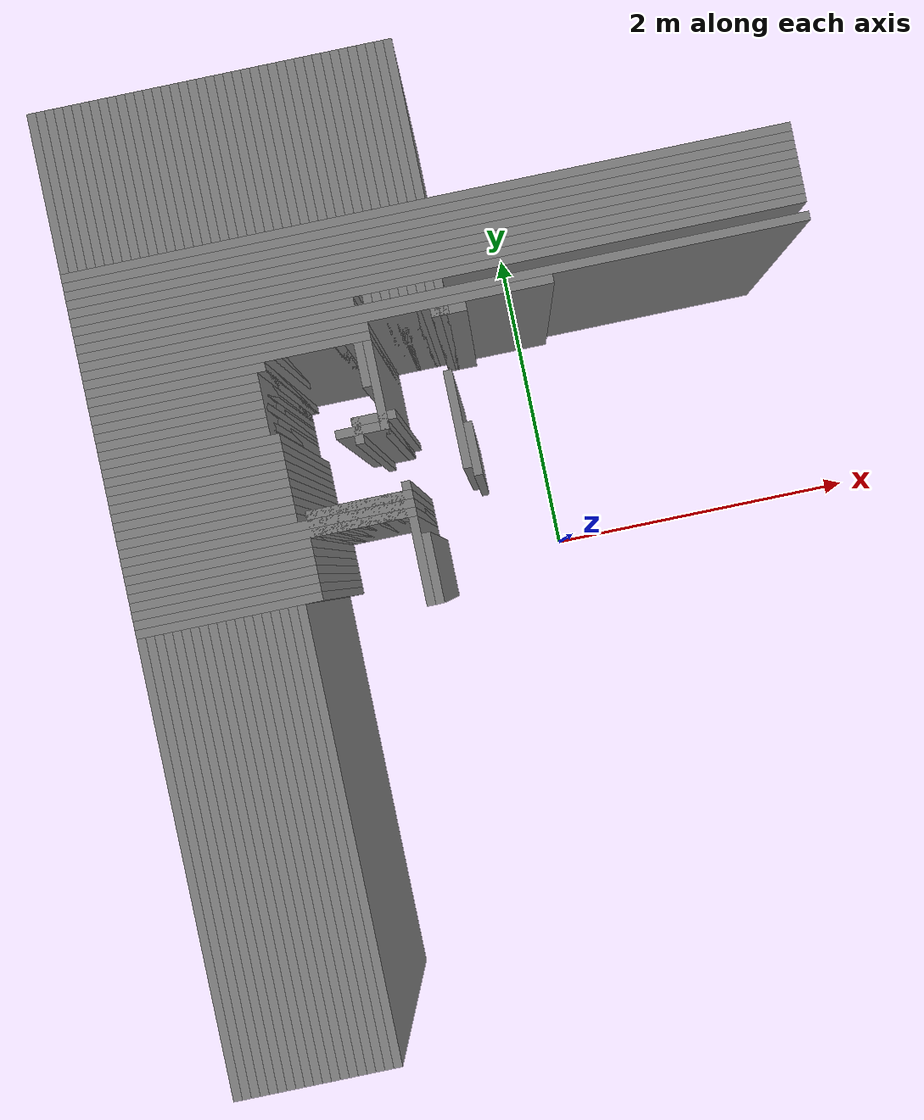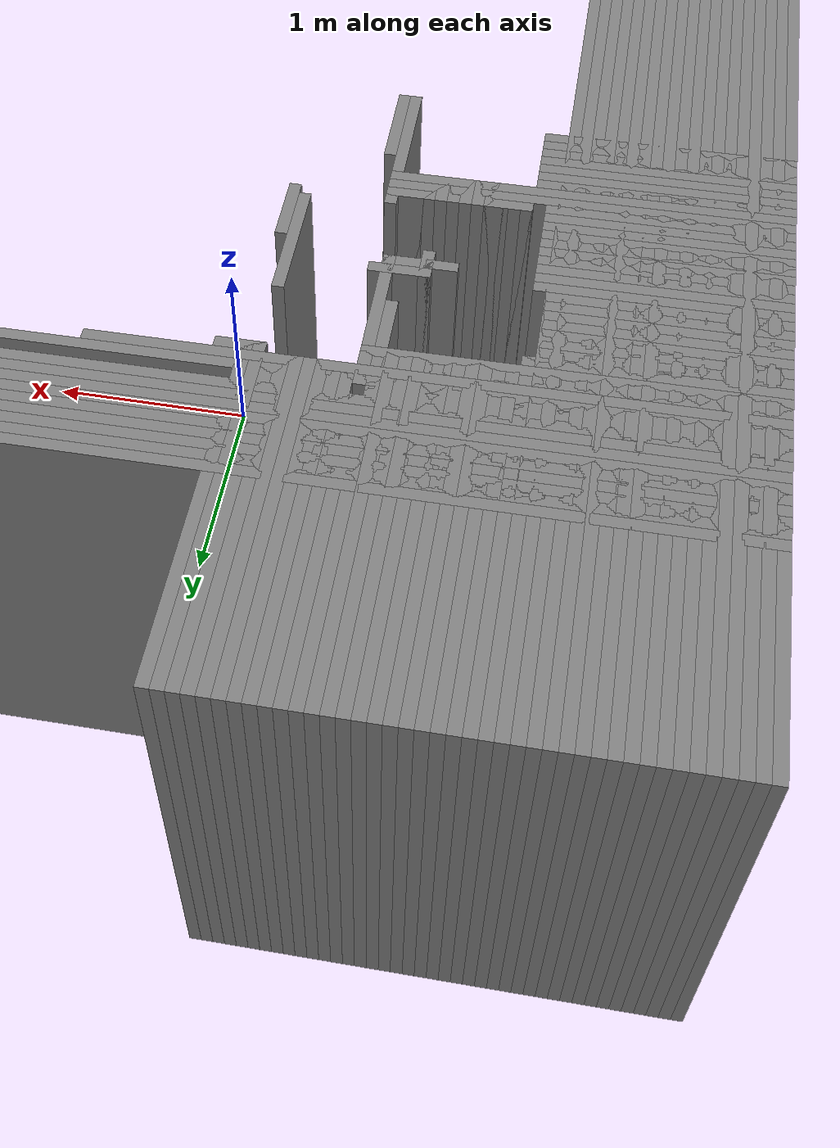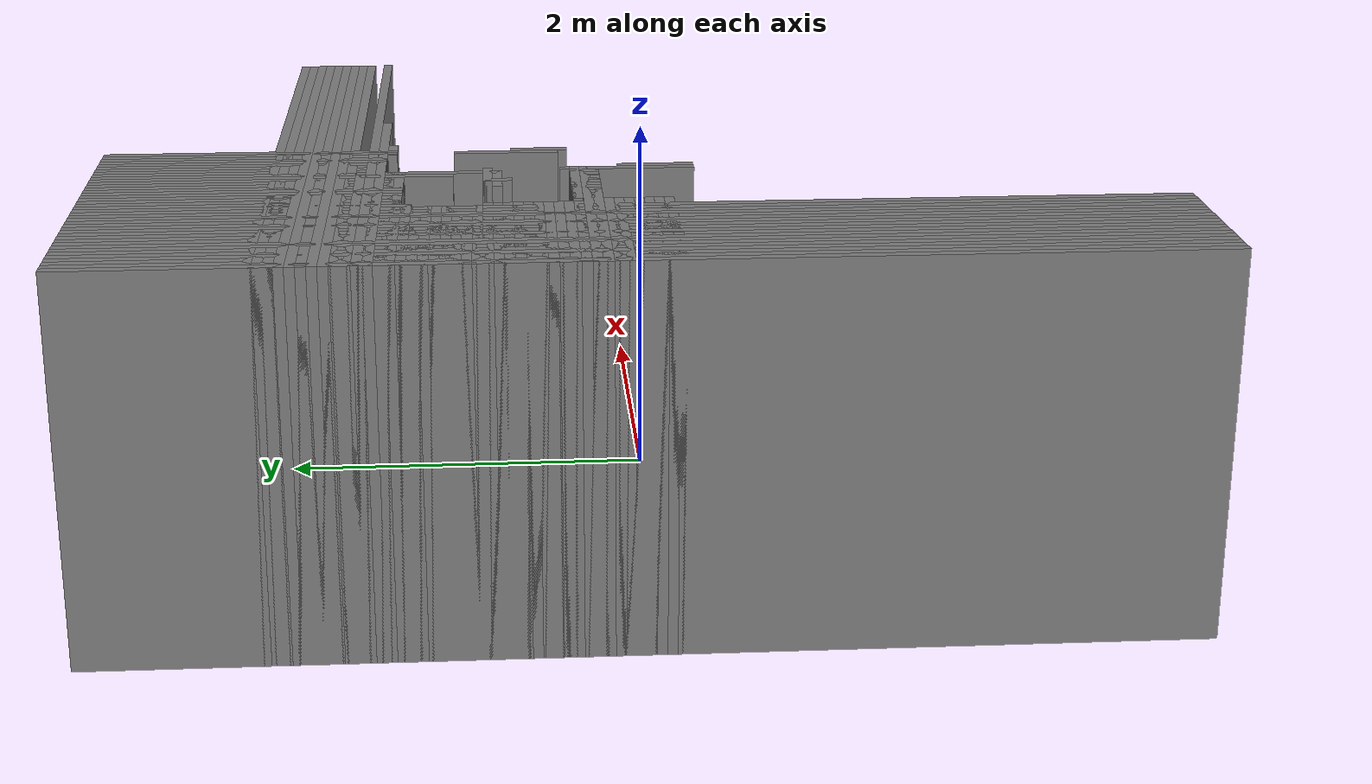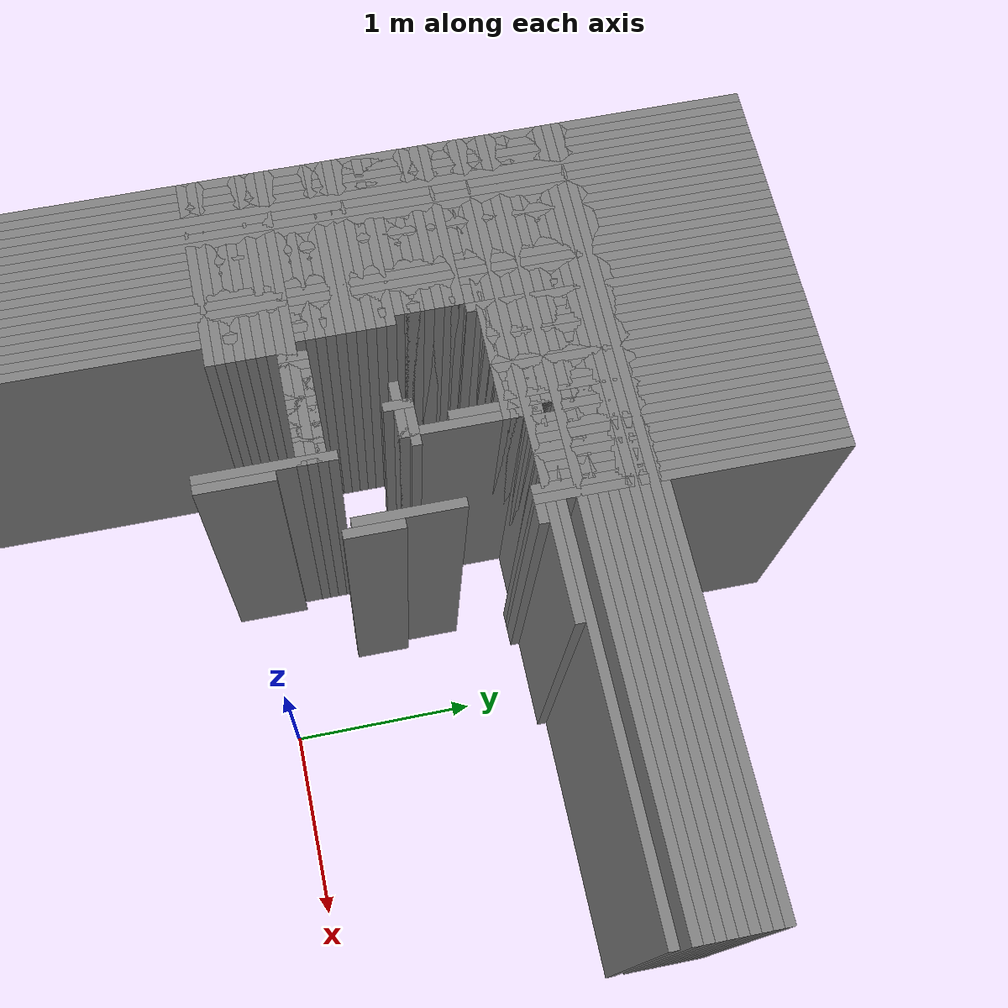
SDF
<sdf version="1.6">
 <model name="maze_map">
  <static>true</static>
  <link name="wall_18">
   <pose>-0.41500000000000004 1.9500000000000006 1.0 0 0 0</pose>
   <collision name="collision">
    <geometry><box><size>4.1000000000000005 0.05 2.0</size></box></geometry>
   </collision>
   <visual name="visual">
    <geometry><box><size>4.1000000000000005 0.05 2.0</size></box></geometry>
    <material><ambient>0.3 0.3 0.3 1</ambient><diffuse>0.5 0.5 0.5 1</diffuse></material>
   </visual>
  </link>
  <link name="wall_19">
   <pose>-0.41500000000000004 1.9 1.0 0 0 0</pose>
   <collision name="collision">
    <geometry><box><size>4.1000000000000005 0.05 2.0</size></box></geometry>
   </collision>
   <visual name="visual">
    <geometry><box><size>4.1000000000000005 0.05 2.0</size></box></geometry>
    <material><ambient>0.3 0.3 0.3 1</ambient><diffuse>0.5 0.5 0.5 1</diffuse></material>
   </visual>
  </link>
  <link name="wall_20">
   <pose>-0.41500000000000004 1.85 1.0 0 0 0</pose>
   <collision name="collision">
    <geometry><box><size>4.1000000000000005 0.05 2.0</size></box></geometry>
   </collision>
   <visual name="visual">
    <geometry><box><size>4.1000000000000005 0.05 2.0</size></box></geometry>
    <material><ambient>0.3 0.3 0.3 1</ambient><diffuse>0.5 0.5 0.5 1</diffuse></material>
   </visual>
  </link>
  <link name="wall_21">
   <pose>-0.41500000000000004 1.8000000000000003 1.0 0 0 0</pose>
   <collision name="collision">
    <geometry><box><size>4.1000000000000005 0.05 2.0</size></box></geometry>
   </collision>
   <visual name="visual">
    <geometry><box><size>4.1000000000000005 0.05 2.0</size></box></geometry>
    <material><ambient>0.3 0.3 0.3 1</ambient><diffuse>0.5 0.5 0.5 1</diffuse></material>
   </visual>
  </link>
  <link name="wall_22">
   <pose>-0.41500000000000004 1.7500000000000004 1.0 0 0 0</pose>
   <collision name="collision">
    <geometry><box><size>4.1000000000000005 0.05 2.0</size></box></geometry>
   </collision>
   <visual name="visual">
    <geometry><box><size>4.1000000000000005 0.05 2.0</size></box></geometry>
    <material><ambient>0.3 0.3 0.3 1</ambient><diffuse>0.5 0.5 0.5 1</diffuse></material>
   </visual>
  </link>
  <link name="wall_23">
   <pose>-0.41500000000000004 1.7000000000000006 1.0 0 0 0</pose>
   <collision name="collision">
    <geometry><box><size>4.1000000000000005 0.05 2.0</size></box></geometry>
   </collision>
   <visual name="visual">
    <geometry><box><size>4.1000000000000005 0.05 2.0</size></box></geometry>
    <material><ambient>0.3 0.3 0.3 1</ambient><diffuse>0.5 0.5 0.5 1</diffuse></material>
   </visual>
  </link>
  <link name="wall_24">
   <pose>-0.41500000000000004 1.65 1.0 0 0 0</pose>
   <collision name="collision">
    <geometry><box><size>4.1000000000000005 0.05 2.0</size></box></geometry>
   </collision>
   <visual name="visual">
    <geometry><box><size>4.1000000000000005 0.05 2.0</size></box></geometry>
    <material><ambient>0.3 0.3 0.3 1</ambient><diffuse>0.5 0.5 0.5 1</diffuse></material>
   </visual>
  </link>
  <link name="wall_25">
   <pose>-0.41500000000000004 1.6 1.0 0 0 0</pose>
   <collision name="collision">
    <geometry><box><size>4.1000000000000005 0.05 2.0</size></box></geometry>
   </collision>
   <visual name="visual">
    <geometry><box><size>4.1000000000000005 0.05 2.0</size></box></geometry>
    <material><ambient>0.3 0.3 0.3 1</ambient><diffuse>0.5 0.5 0.5 1</diffuse></material>
   </visual>
  </link>
  <link name="wall_26">
   <pose>-0.41500000000000004 1.5500000000000003 1.0 0 0 0</pose>
   <collision name="collision">
    <geometry><box><size>4.1000000000000005 0.05 2.0</size></box></geometry>
   </collision>
   <visual name="visual">
    <geometry><box><size>4.1000000000000005 0.05 2.0</size></box></geometry>
    <material><ambient>0.3 0.3 0.3 1</ambient><diffuse>0.5 0.5 0.5 1</diffuse></material>
   </visual>
  </link>
  <link name="wall_27">
   <pose>-1.69 1.5000000000000004 1.0 0 0 0</pose>
   <collision name="collision"><geometry><box><size>1.55 0.05 2.0</size></box></geometry></collision>
   <visual name="visual">
    <geometry><box><size>1.55 0.05 2.0</size></box></geometry>
    <material><ambient>0.3 0.3 0.3 1</ambient><diffuse>0.5 0.5 0.5 1</diffuse></material>
   </visual>
  </link>
  <link name="wall_29">
   <pose>-0.41500000000000004 1.4500000000000006 1.0 0 0 0</pose>
   <collision name="collision">
    <geometry><box><size>4.1000000000000005 0.05 2.0</size></box></geometry>
   </collision>
   <visual name="visual">
    <geometry><box><size>4.1000000000000005 0.05 2.0</size></box></geometry>
    <material><ambient>0.3 0.3 0.3 1</ambient><diffuse>0.5 0.5 0.5 1</diffuse></material>
   </visual>
  </link>
  <link name="wall_30">
   <pose>-1.14 1.4 1.0 0 0 0</pose>
   <collision name="collision">
    <geometry><box><size>2.6500000000000004 0.05 2.0</size></box></geometry>
   </collision>
   <visual name="visual">
    <geometry><box><size>2.6500000000000004 0.05 2.0</size></box></geometry>
    <material><ambient>0.3 0.3 0.3 1</ambient><diffuse>0.5 0.5 0.5 1</diffuse></material>
   </visual>
  </link>
  <link name="wall_32">
   <pose>-1.665 1.35 1.0 0 0 0</pose>
   <collision name="collision"><geometry><box><size>1.6 0.05 2.0</size></box></geometry></collision>
   <visual name="visual">
    <geometry><box><size>1.6 0.05 2.0</size></box></geometry>
    <material><ambient>0.3 0.3 0.3 1</ambient><diffuse>0.5 0.5 0.5 1</diffuse></material>
   </visual>
  </link>
  <link name="wall_33">
   <pose>-0.41500000000000004 1.35 1.0 0 0 0</pose>
   <collision name="collision"><geometry><box><size>0.2 0.05 2.0</size></box></geometry></collision>
   <visual name="visual">
    <geometry><box><size>0.2 0.05 2.0</size></box></geometry>
    <material><ambient>0.3 0.3 0.3 1</ambient><diffuse>0.5 0.5 0.5 1</diffuse></material>
   </visual>
  </link>
  <link name="wall_35">
   <pose>-1.665 1.3000000000000003 1.0 0 0 0</pose>
   <collision name="collision"><geometry><box><size>1.6 0.05 2.0</size></box></geometry></collision>
   <visual name="visual">
    <geometry><box><size>1.6 0.05 2.0</size></box></geometry>
    <material><ambient>0.3 0.3 0.3 1</ambient><diffuse>0.5 0.5 0.5 1</diffuse></material>
   </visual>
  </link>
  <link name="wall_37">
   <pose>-1.9649999999999999 1.2500000000000004 1.0 0 0 0</pose>
   <collision name="collision"><geometry><box><size>1.0 0.05 2.0</size></box></geometry></collision>
   <visual name="visual">
    <geometry><box><size>1.0 0.05 2.0</size></box></geometry>
    <material><ambient>0.3 0.3 0.3 1</ambient><diffuse>0.5 0.5 0.5 1</diffuse></material>
   </visual>
  </link>
  <link name="wall_39">
   <pose>-1.99 1.2000000000000002 1.0 0 0 0</pose>
   <collision name="collision">
    <geometry><box><size>0.9500000000000001 0.05 2.0</size></box></geometry>
   </collision>
   <visual name="visual">
    <geometry><box><size>0.9500000000000001 0.05 2.0</size></box></geometry>
    <material><ambient>0.3 0.3 0.3 1</ambient><diffuse>0.5 0.5 0.5 1</diffuse></material>
   </visual>
  </link>
  <link name="wall_41">
   <pose>-1.99 1.1500000000000004 1.0 0 0 0</pose>
   <collision name="collision">
    <geometry><box><size>0.9500000000000001 0.05 2.0</size></box></geometry>
   </collision>
   <visual name="visual">
    <geometry><box><size>0.9500000000000001 0.05 2.0</size></box></geometry>
    <material><ambient>0.3 0.3 0.3 1</ambient><diffuse>0.5 0.5 0.5 1</diffuse></material>
   </visual>
  </link>
  <link name="wall_43">
   <pose>-1.99 1.1 1.0 0 0 0</pose>
   <collision name="collision">
    <geometry><box><size>0.9500000000000001 0.05 2.0</size></box></geometry>
   </collision>
   <visual name="visual">
    <geometry><box><size>0.9500000000000001 0.05 2.0</size></box></geometry>
    <material><ambient>0.3 0.3 0.3 1</ambient><diffuse>0.5 0.5 0.5 1</diffuse></material>
   </visual>
  </link>
  <link name="wall_45">
   <pose>-1.99 1.0500000000000003 1.0 0 0 0</pose>
   <collision name="collision">
    <geometry><box><size>0.9500000000000001 0.05 2.0</size></box></geometry>
   </collision>
   <visual name="visual">
    <geometry><box><size>0.9500000000000001 0.05 2.0</size></box></geometry>
    <material><ambient>0.3 0.3 0.3 1</ambient><diffuse>0.5 0.5 0.5 1</diffuse></material>
   </visual>
  </link>
  <link name="wall_48">
   <pose>-1.99 1.0000000000000004 1.0 0 0 0</pose>
   <collision name="collision">
    <geometry><box><size>0.9500000000000001 0.05 2.0</size></box></geometry>
   </collision>
   <visual name="visual">
    <geometry><box><size>0.9500000000000001 0.05 2.0</size></box></geometry>
    <material><ambient>0.3 0.3 0.3 1</ambient><diffuse>0.5 0.5 0.5 1</diffuse></material>
   </visual>
  </link>
  <link name="wall_50">
   <pose>-1.99 0.9500000000000002 1.0 0 0 0</pose>
   <collision name="collision">
    <geometry><box><size>0.9500000000000001 0.05 2.0</size></box></geometry>
   </collision>
   <visual name="visual">
    <geometry><box><size>0.9500000000000001 0.05 2.0</size></box></geometry>
    <material><ambient>0.3 0.3 0.3 1</ambient><diffuse>0.5 0.5 0.5 1</diffuse></material>
   </visual>
  </link>
  <link name="wall_52">
   <pose>-1.99 0.9000000000000004 1.0 0 0 0</pose>
   <collision name="collision">
    <geometry><box><size>0.9500000000000001 0.05 2.0</size></box></geometry>
   </collision>
   <visual name="visual">
    <geometry><box><size>0.9500000000000001 0.05 2.0</size></box></geometry>
    <material><ambient>0.3 0.3 0.3 1</ambient><diffuse>0.5 0.5 0.5 1</diffuse></material>
   </visual>
  </link>
  <link name="wall_54">
   <pose>-1.9649999999999999 0.8500000000000001 1.0 0 0 0</pose>
   <collision name="collision"><geometry><box><size>1.0 0.05 2.0</size></box></geometry></collision>
   <visual name="visual">
    <geometry><box><size>1.0 0.05 2.0</size></box></geometry>
    <material><ambient>0.3 0.3 0.3 1</ambient><diffuse>0.5 0.5 0.5 1</diffuse></material>
   </visual>
  </link>
  <link name="wall_55">
   <pose>-0.94 0.8500000000000001 1.0 0 0 0</pose>
   <collision name="collision"><geometry><box><size>0.25 0.05 2.0</size></box></geometry></collision>
   <visual name="visual">
    <geometry><box><size>0.25 0.05 2.0</size></box></geometry>
    <material><ambient>0.3 0.3 0.3 1</ambient><diffuse>0.5 0.5 0.5 1</diffuse></material>
   </visual>
  </link>
  <link name="wall_57">
   <pose>-1.9649999999999999 0.8000000000000003 1.0 0 0 0</pose>
   <collision name="collision"><geometry><box><size>1.0 0.05 2.0</size></box></geometry></collision>
   <visual name="visual">
    <geometry><box><size>1.0 0.05 2.0</size></box></geometry>
    <material><ambient>0.3 0.3 0.3 1</ambient><diffuse>0.5 0.5 0.5 1</diffuse></material>
   </visual>
  </link>
  <link name="wall_58">
   <pose>-1.015 0.8000000000000003 1.0 0 0 0</pose>
   <collision name="collision">
    <geometry><box><size>0.30000000000000004 0.05 2.0</size></box></geometry>
   </collision>
   <visual name="visual">
    <geometry><box><size>0.30000000000000004 0.05 2.0</size></box></geometry>
    <material><ambient>0.3 0.3 0.3 1</ambient><diffuse>0.5 0.5 0.5 1</diffuse></material>
   </visual>
  </link>
  <link name="wall_60">
   <pose>-1.9649999999999999 0.7500000000000004 1.0 0 0 0</pose>
   <collision name="collision"><geometry><box><size>1.0 0.05 2.0</size></box></geometry></collision>
   <visual name="visual">
    <geometry><box><size>1.0 0.05 2.0</size></box></geometry>
    <material><ambient>0.3 0.3 0.3 1</ambient><diffuse>0.5 0.5 0.5 1</diffuse></material>
   </visual>
  </link>
  <link name="wall_62">
   <pose>-1.9649999999999999 0.7000000000000002 1.0 0 0 0</pose>
   <collision name="collision"><geometry><box><size>1.0 0.05 2.0</size></box></geometry></collision>
   <visual name="visual">
    <geometry><box><size>1.0 0.05 2.0</size></box></geometry>
    <material><ambient>0.3 0.3 0.3 1</ambient><diffuse>0.5 0.5 0.5 1</diffuse></material>
   </visual>
  </link>
  <link name="wall_64">
   <pose>-1.9649999999999999 0.6500000000000004 1.0 0 0 0</pose>
   <collision name="collision"><geometry><box><size>1.0 0.05 2.0</size></box></geometry></collision>
   <visual name="visual">
    <geometry><box><size>1.0 0.05 2.0</size></box></geometry>
    <material><ambient>0.3 0.3 0.3 1</ambient><diffuse>0.5 0.5 0.5 1</diffuse></material>
   </visual>
  </link>
  <link name="wall_66">
   <pose>-1.9649999999999999 0.6000000000000001 1.0 0 0 0</pose>
   <collision name="collision"><geometry><box><size>1.0 0.05 2.0</size></box></geometry></collision>
   <visual name="visual">
    <geometry><box><size>1.0 0.05 2.0</size></box></geometry>
    <material><ambient>0.3 0.3 0.3 1</ambient><diffuse>0.5 0.5 0.5 1</diffuse></material>
   </visual>
  </link>
  <link name="wall_68">
   <pose>-1.9649999999999999 0.5500000000000003 1.0 0 0 0</pose>
   <collision name="collision"><geometry><box><size>1.0 0.05 2.0</size></box></geometry></collision>
   <visual name="visual">
    <geometry><box><size>1.0 0.05 2.0</size></box></geometry>
    <material><ambient>0.3 0.3 0.3 1</ambient><diffuse>0.5 0.5 0.5 1</diffuse></material>
   </visual>
  </link>
  <link name="wall_71">
   <pose>-1.9649999999999999 0.5000000000000004 1.0 0 0 0</pose>
   <collision name="collision"><geometry><box><size>1.0 0.05 2.0</size></box></geometry></collision>
   <visual name="visual">
    <geometry><box><size>1.0 0.05 2.0</size></box></geometry>
    <material><ambient>0.3 0.3 0.3 1</ambient><diffuse>0.5 0.5 0.5 1</diffuse></material>
   </visual>
  </link>
  <link name="wall_74">
   <pose>-1.9649999999999999 0.4500000000000002 1.0 0 0 0</pose>
   <collision name="collision"><geometry><box><size>1.0 0.05 2.0</size></box></geometry></collision>
   <visual name="visual">
    <geometry><box><size>1.0 0.05 2.0</size></box></geometry>
    <material><ambient>0.3 0.3 0.3 1</ambient><diffuse>0.5 0.5 0.5 1</diffuse></material>
   </visual>
  </link>
  <link name="wall_77">
   <pose>-1.9649999999999999 0.40000000000000036 1.0 0 0 0</pose>
   <collision name="collision"><geometry><box><size>1.0 0.05 2.0</size></box></geometry></collision>
   <visual name="visual">
    <geometry><box><size>1.0 0.05 2.0</size></box></geometry>
    <material><ambient>0.3 0.3 0.3 1</ambient><diffuse>0.5 0.5 0.5 1</diffuse></material>
   </visual>
  </link>
  <link name="wall_78">
   <pose>-1.1149999999999998 0.40000000000000036 1.0 0 0 0</pose>
   <collision name="collision">
    <geometry><box><size>0.6000000000000001 0.05 2.0</size></box></geometry>
   </collision>
   <visual name="visual">
    <geometry><box><size>0.6000000000000001 0.05 2.0</size></box></geometry>
    <material><ambient>0.3 0.3 0.3 1</ambient><diffuse>0.5 0.5 0.5 1</diffuse></material>
   </visual>
  </link>
  <link name="wall_80">
   <pose>-1.64 0.3500000000000001 1.0 0 0 0</pose>
   <collision name="collision">
    <geometry><box><size>1.6500000000000001 0.05 2.0</size></box></geometry>
   </collision>
   <visual name="visual">
    <geometry><box><size>1.6500000000000001 0.05 2.0</size></box></geometry>
    <material><ambient>0.3 0.3 0.3 1</ambient><diffuse>0.5 0.5 0.5 1</diffuse></material>
   </visual>
  </link>
  <link name="wall_82">
   <pose>-1.64 0.30000000000000027 1.0 0 0 0</pose>
   <collision name="collision">
    <geometry><box><size>1.6500000000000001 0.05 2.0</size></box></geometry>
   </collision>
   <visual name="visual">
    <geometry><box><size>1.6500000000000001 0.05 2.0</size></box></geometry>
    <material><ambient>0.3 0.3 0.3 1</ambient><diffuse>0.5 0.5 0.5 1</diffuse></material>
   </visual>
  </link>
  <link name="wall_84">
   <pose>-1.94 0.25000000000000044 1.0 0 0 0</pose>
   <collision name="collision"><geometry><box><size>1.05 0.05 2.0</size></box></geometry></collision>
   <visual name="visual">
    <geometry><box><size>1.05 0.05 2.0</size></box></geometry>
    <material><ambient>0.3 0.3 0.3 1</ambient><diffuse>0.5 0.5 0.5 1</diffuse></material>
   </visual>
  </link>
  <link name="wall_86">
   <pose>-1.94 0.20000000000000018 1.0 0 0 0</pose>
   <collision name="collision"><geometry><box><size>1.05 0.05 2.0</size></box></geometry></collision>
   <visual name="visual">
    <geometry><box><size>1.05 0.05 2.0</size></box></geometry>
    <material><ambient>0.3 0.3 0.3 1</ambient><diffuse>0.5 0.5 0.5 1</diffuse></material>
   </visual>
  </link>
  <link name="wall_88">
   <pose>-1.94 0.15000000000000036 1.0 0 0 0</pose>
   <collision name="collision"><geometry><box><size>1.05 0.05 2.0</size></box></geometry></collision>
   <visual name="visual">
    <geometry><box><size>1.05 0.05 2.0</size></box></geometry>
    <material><ambient>0.3 0.3 0.3 1</ambient><diffuse>0.5 0.5 0.5 1</diffuse></material>
   </visual>
  </link>
  <link name="wall_91">
   <pose>-1.94 0.10000000000000009 1.0 0 0 0</pose>
   <collision name="collision"><geometry><box><size>1.05 0.05 2.0</size></box></geometry></collision>
   <visual name="visual">
    <geometry><box><size>1.05 0.05 2.0</size></box></geometry>
    <material><ambient>0.3 0.3 0.3 1</ambient><diffuse>0.5 0.5 0.5 1</diffuse></material>
   </visual>
  </link>
  <link name="wall_94">
   <pose>-1.94 0.050000000000000266 1.0 0 0 0</pose>
   <collision name="collision"><geometry><box><size>1.05 0.05 2.0</size></box></geometry></collision>
   <visual name="visual">
    <geometry><box><size>1.05 0.05 2.0</size></box></geometry>
    <material><ambient>0.3 0.3 0.3 1</ambient><diffuse>0.5 0.5 0.5 1</diffuse></material>
   </visual>
  </link>
  <link name="wall_96">
   <pose>-1.94 4.440892098500626e-16 1.0 0 0 0</pose>
   <collision name="collision"><geometry><box><size>1.05 0.05 2.0</size></box></geometry></collision>
   <visual name="visual">
    <geometry><box><size>1.05 0.05 2.0</size></box></geometry>
    <material><ambient>0.3 0.3 0.3 1</ambient><diffuse>0.5 0.5 0.5 1</diffuse></material>
   </visual>
  </link>
  <link name="wall_98">
   <pose>-1.94 -0.04999999999999982 1.0 0 0 0</pose>
   <collision name="collision"><geometry><box><size>1.05 0.05 2.0</size></box></geometry></collision>
   <visual name="visual">
    <geometry><box><size>1.05 0.05 2.0</size></box></geometry>
    <material><ambient>0.3 0.3 0.3 1</ambient><diffuse>0.5 0.5 0.5 1</diffuse></material>
   </visual>
  </link>
  <link name="wall_162">
   <pose>-2.44 0.10000000000000009 1.0 0 0 0</pose>
   <collision name="collision">
    <geometry><box><size>0.05 5.550000000000001 2.0</size></box></geometry>
   </collision>
   <visual name="visual">
    <geometry><box><size>0.05 5.550000000000001 2.0</size></box></geometry>
    <material><ambient>0.3 0.3 0.3 1</ambient><diffuse>0.5 0.5 0.5 1</diffuse></material>
   </visual>
  </link>
  <link name="wall_163">
   <pose>-2.39 0.10000000000000009 1.0 0 0 0</pose>
   <collision name="collision">
    <geometry><box><size>0.05 5.550000000000001 2.0</size></box></geometry>
   </collision>
   <visual name="visual">
    <geometry><box><size>0.05 5.550000000000001 2.0</size></box></geometry>
    <material><ambient>0.3 0.3 0.3 1</ambient><diffuse>0.5 0.5 0.5 1</diffuse></material>
   </visual>
  </link>
  <link name="wall_164">
   <pose>-2.34 0.10000000000000009 1.0 0 0 0</pose>
   <collision name="collision">
    <geometry><box><size>0.05 5.550000000000001 2.0</size></box></geometry>
   </collision>
   <visual name="visual">
    <geometry><box><size>0.05 5.550000000000001 2.0</size></box></geometry>
    <material><ambient>0.3 0.3 0.3 1</ambient><diffuse>0.5 0.5 0.5 1</diffuse></material>
   </visual>
  </link>
  <link name="wall_165">
   <pose>-2.29 0.10000000000000009 1.0 0 0 0</pose>
   <collision name="collision">
    <geometry><box><size>0.05 5.550000000000001 2.0</size></box></geometry>
   </collision>
   <visual name="visual">
    <geometry><box><size>0.05 5.550000000000001 2.0</size></box></geometry>
    <material><ambient>0.3 0.3 0.3 1</ambient><diffuse>0.5 0.5 0.5 1</diffuse></material>
   </visual>
  </link>
  <link name="wall_166">
   <pose>-2.2399999999999998 0.10000000000000009 1.0 0 0 0</pose>
   <collision name="collision">
    <geometry><box><size>0.05 5.550000000000001 2.0</size></box></geometry>
   </collision>
   <visual name="visual">
    <geometry><box><size>0.05 5.550000000000001 2.0</size></box></geometry>
    <material><ambient>0.3 0.3 0.3 1</ambient><diffuse>0.5 0.5 0.5 1</diffuse></material>
   </visual>
  </link>
  <link name="wall_167">
   <pose>-2.19 0.10000000000000009 1.0 0 0 0</pose>
   <collision name="collision">
    <geometry><box><size>0.05 5.550000000000001 2.0</size></box></geometry>
   </collision>
   <visual name="visual">
    <geometry><box><size>0.05 5.550000000000001 2.0</size></box></geometry>
    <material><ambient>0.3 0.3 0.3 1</ambient><diffuse>0.5 0.5 0.5 1</diffuse></material>
   </visual>
  </link>
  <link name="wall_168">
   <pose>-2.1399999999999997 0.10000000000000009 1.0 0 0 0</pose>
   <collision name="collision">
    <geometry><box><size>0.05 5.550000000000001 2.0</size></box></geometry>
   </collision>
   <visual name="visual">
    <geometry><box><size>0.05 5.550000000000001 2.0</size></box></geometry>
    <material><ambient>0.3 0.3 0.3 1</ambient><diffuse>0.5 0.5 0.5 1</diffuse></material>
   </visual>
  </link>
  <link name="wall_169">
   <pose>-2.09 0.10000000000000009 1.0 0 0 0</pose>
   <collision name="collision">
    <geometry><box><size>0.05 5.550000000000001 2.0</size></box></geometry>
   </collision>
   <visual name="visual">
    <geometry><box><size>0.05 5.550000000000001 2.0</size></box></geometry>
    <material><ambient>0.3 0.3 0.3 1</ambient><diffuse>0.5 0.5 0.5 1</diffuse></material>
   </visual>
  </link>
  <link name="wall_170">
   <pose>-2.04 0.10000000000000009 1.0 0 0 0</pose>
   <collision name="collision">
    <geometry><box><size>0.05 5.550000000000001 2.0</size></box></geometry>
   </collision>
   <visual name="visual">
    <geometry><box><size>0.05 5.550000000000001 2.0</size></box></geometry>
    <material><ambient>0.3 0.3 0.3 1</ambient><diffuse>0.5 0.5 0.5 1</diffuse></material>
   </visual>
  </link>
  <link name="wall_171">
   <pose>-1.99 0.10000000000000009 1.0 0 0 0</pose>
   <collision name="collision">
    <geometry><box><size>0.05 5.550000000000001 2.0</size></box></geometry>
   </collision>
   <visual name="visual">
    <geometry><box><size>0.05 5.550000000000001 2.0</size></box></geometry>
    <material><ambient>0.3 0.3 0.3 1</ambient><diffuse>0.5 0.5 0.5 1</diffuse></material>
   </visual>
  </link>
  <link name="wall_172">
   <pose>-1.94 0.10000000000000009 1.0 0 0 0</pose>
   <collision name="collision">
    <geometry><box><size>0.05 5.550000000000001 2.0</size></box></geometry>
   </collision>
   <visual name="visual">
    <geometry><box><size>0.05 5.550000000000001 2.0</size></box></geometry>
    <material><ambient>0.3 0.3 0.3 1</ambient><diffuse>0.5 0.5 0.5 1</diffuse></material>
   </visual>
  </link>
  <link name="wall_173">
   <pose>-1.89 0.10000000000000009 1.0 0 0 0</pose>
   <collision name="collision">
    <geometry><box><size>0.05 5.550000000000001 2.0</size></box></geometry>
   </collision>
   <visual name="visual">
    <geometry><box><size>0.05 5.550000000000001 2.0</size></box></geometry>
    <material><ambient>0.3 0.3 0.3 1</ambient><diffuse>0.5 0.5 0.5 1</diffuse></material>
   </visual>
  </link>
  <link name="wall_174">
   <pose>-1.8399999999999999 0.10000000000000009 1.0 0 0 0</pose>
   <collision name="collision">
    <geometry><box><size>0.05 5.550000000000001 2.0</size></box></geometry>
   </collision>
   <visual name="visual">
    <geometry><box><size>0.05 5.550000000000001 2.0</size></box></geometry>
    <material><ambient>0.3 0.3 0.3 1</ambient><diffuse>0.5 0.5 0.5 1</diffuse></material>
   </visual>
  </link>
  <link name="wall_175">
   <pose>-1.79 0.10000000000000009 1.0 0 0 0</pose>
   <collision name="collision">
    <geometry><box><size>0.05 5.550000000000001 2.0</size></box></geometry>
   </collision>
   <visual name="visual">
    <geometry><box><size>0.05 5.550000000000001 2.0</size></box></geometry>
    <material><ambient>0.3 0.3 0.3 1</ambient><diffuse>0.5 0.5 0.5 1</diffuse></material>
   </visual>
  </link>
  <link name="wall_176">
   <pose>-1.7399999999999998 0.10000000000000009 1.0 0 0 0</pose>
   <collision name="collision">
    <geometry><box><size>0.05 5.550000000000001 2.0</size></box></geometry>
   </collision>
   <visual name="visual">
    <geometry><box><size>0.05 5.550000000000001 2.0</size></box></geometry>
    <material><ambient>0.3 0.3 0.3 1</ambient><diffuse>0.5 0.5 0.5 1</diffuse></material>
   </visual>
  </link>
  <link name="wall_177">
   <pose>-1.69 0.10000000000000009 1.0 0 0 0</pose>
   <collision name="collision">
    <geometry><box><size>0.05 5.550000000000001 2.0</size></box></geometry>
   </collision>
   <visual name="visual">
    <geometry><box><size>0.05 5.550000000000001 2.0</size></box></geometry>
    <material><ambient>0.3 0.3 0.3 1</ambient><diffuse>0.5 0.5 0.5 1</diffuse></material>
   </visual>
  </link>
  <link name="wall_178">
   <pose>-1.64 0.10000000000000009 1.0 0 0 0</pose>
   <collision name="collision">
    <geometry><box><size>0.05 5.550000000000001 2.0</size></box></geometry>
   </collision>
   <visual name="visual">
    <geometry><box><size>0.05 5.550000000000001 2.0</size></box></geometry>
    <material><ambient>0.3 0.3 0.3 1</ambient><diffuse>0.5 0.5 0.5 1</diffuse></material>
   </visual>
  </link>
  <link name="wall_179">
   <pose>-1.5899999999999999 0.10000000000000009 1.0 0 0 0</pose>
   <collision name="collision">
    <geometry><box><size>0.05 5.550000000000001 2.0</size></box></geometry>
   </collision>
   <visual name="visual">
    <geometry><box><size>0.05 5.550000000000001 2.0</size></box></geometry>
    <material><ambient>0.3 0.3 0.3 1</ambient><diffuse>0.5 0.5 0.5 1</diffuse></material>
   </visual>
  </link>
  <link name="wall_180">
   <pose>-1.54 0.10000000000000009 1.0 0 0 0</pose>
   <collision name="collision">
    <geometry><box><size>0.05 5.550000000000001 2.0</size></box></geometry>
   </collision>
   <visual name="visual">
    <geometry><box><size>0.05 5.550000000000001 2.0</size></box></geometry>
    <material><ambient>0.3 0.3 0.3 1</ambient><diffuse>0.5 0.5 0.5 1</diffuse></material>
   </visual>
  </link>
  <link name="wall_181">
   <pose>-1.4899999999999998 2.0500000000000003 1.0 0 0 0</pose>
   <collision name="collision">
    <geometry><box><size>0.05 1.6500000000000001 2.0</size></box></geometry>
   </collision>
   <visual name="visual">
    <geometry><box><size>0.05 1.6500000000000001 2.0</size></box></geometry>
    <material><ambient>0.3 0.3 0.3 1</ambient><diffuse>0.5 0.5 0.5 1</diffuse></material>
   </visual>
  </link>
  <link name="wall_183">
   <pose>-1.44 2.0750000000000006 1.0 0 0 0</pose>
   <collision name="collision"><geometry><box><size>0.05 1.6 2.0</size></box></geometry></collision>
   <visual name="visual">
    <geometry><box><size>0.05 1.6 2.0</size></box></geometry>
    <material><ambient>0.3 0.3 0.3 1</ambient><diffuse>0.5 0.5 0.5 1</diffuse></material>
   </visual>
  </link>
  <link name="wall_185">
   <pose>-1.39 2.0750000000000006 1.0 0 0 0</pose>
   <collision name="collision"><geometry><box><size>0.05 1.6 2.0</size></box></geometry></collision>
   <visual name="visual">
    <geometry><box><size>0.05 1.6 2.0</size></box></geometry>
    <material><ambient>0.3 0.3 0.3 1</ambient><diffuse>0.5 0.5 0.5 1</diffuse></material>
   </visual>
  </link>
  <link name="wall_186">
   <pose>-1.39 0.3500000000000001 1.0 0 0 0</pose>
   <collision name="collision">
    <geometry><box><size>0.05 0.15000000000000002 2.0</size></box></geometry>
   </collision>
   <visual name="visual">
    <geometry><box><size>0.05 0.15000000000000002 2.0</size></box></geometry>
    <material><ambient>0.3 0.3 0.3 1</ambient><diffuse>0.5 0.5 0.5 1</diffuse></material>
   </visual>
  </link>
  <link name="wall_188">
   <pose>-1.3399999999999999 2.0750000000000006 1.0 0 0 0</pose>
   <collision name="collision"><geometry><box><size>0.05 1.6 2.0</size></box></geometry></collision>
   <visual name="visual">
    <geometry><box><size>0.05 1.6 2.0</size></box></geometry>
    <material><ambient>0.3 0.3 0.3 1</ambient><diffuse>0.5 0.5 0.5 1</diffuse></material>
   </visual>
  </link>
  <link name="wall_189">
   <pose>-1.3399999999999999 0.3500000000000001 1.0 0 0 0</pose>
   <collision name="collision">
    <geometry><box><size>0.05 0.15000000000000002 2.0</size></box></geometry>
   </collision>
   <visual name="visual">
    <geometry><box><size>0.05 0.15000000000000002 2.0</size></box></geometry>
    <material><ambient>0.3 0.3 0.3 1</ambient><diffuse>0.5 0.5 0.5 1</diffuse></material>
   </visual>
  </link>
  <link name="wall_191">
   <pose>-1.2899999999999998 2.0750000000000006 1.0 0 0 0</pose>
   <collision name="collision"><geometry><box><size>0.05 1.6 2.0</size></box></geometry></collision>
   <visual name="visual">
    <geometry><box><size>0.05 1.6 2.0</size></box></geometry>
    <material><ambient>0.3 0.3 0.3 1</ambient><diffuse>0.5 0.5 0.5 1</diffuse></material>
   </visual>
  </link>
  <link name="wall_192">
   <pose>-1.2899999999999998 0.3500000000000001 1.0 0 0 0</pose>
   <collision name="collision">
    <geometry><box><size>0.05 0.15000000000000002 2.0</size></box></geometry>
   </collision>
   <visual name="visual">
    <geometry><box><size>0.05 0.15000000000000002 2.0</size></box></geometry>
    <material><ambient>0.3 0.3 0.3 1</ambient><diffuse>0.5 0.5 0.5 1</diffuse></material>
   </visual>
  </link>
  <link name="wall_194">
   <pose>-1.2399999999999998 2.0750000000000006 1.0 0 0 0</pose>
   <collision name="collision"><geometry><box><size>0.05 1.6 2.0</size></box></geometry></collision>
   <visual name="visual">
    <geometry><box><size>0.05 1.6 2.0</size></box></geometry>
    <material><ambient>0.3 0.3 0.3 1</ambient><diffuse>0.5 0.5 0.5 1</diffuse></material>
   </visual>
  </link>
  <link name="wall_195">
   <pose>-1.2399999999999998 0.3500000000000001 1.0 0 0 0</pose>
   <collision name="collision">
    <geometry><box><size>0.05 0.15000000000000002 2.0</size></box></geometry>
   </collision>
   <visual name="visual">
    <geometry><box><size>0.05 0.15000000000000002 2.0</size></box></geometry>
    <material><ambient>0.3 0.3 0.3 1</ambient><diffuse>0.5 0.5 0.5 1</diffuse></material>
   </visual>
  </link>
  <link name="wall_197">
   <pose>-1.19 2.0750000000000006 1.0 0 0 0</pose>
   <collision name="collision"><geometry><box><size>0.05 1.6 2.0</size></box></geometry></collision>
   <visual name="visual">
    <geometry><box><size>0.05 1.6 2.0</size></box></geometry>
    <material><ambient>0.3 0.3 0.3 1</ambient><diffuse>0.5 0.5 0.5 1</diffuse></material>
   </visual>
  </link>
  <link name="wall_198">
   <pose>-1.19 0.3500000000000001 1.0 0 0 0</pose>
   <collision name="collision">
    <geometry><box><size>0.05 0.15000000000000002 2.0</size></box></geometry>
   </collision>
   <visual name="visual">
    <geometry><box><size>0.05 0.15000000000000002 2.0</size></box></geometry>
    <material><ambient>0.3 0.3 0.3 1</ambient><diffuse>0.5 0.5 0.5 1</diffuse></material>
   </visual>
  </link>
  <link name="wall_200">
   <pose>-1.14 2.0750000000000006 1.0 0 0 0</pose>
   <collision name="collision"><geometry><box><size>0.05 1.6 2.0</size></box></geometry></collision>
   <visual name="visual">
    <geometry><box><size>0.05 1.6 2.0</size></box></geometry>
    <material><ambient>0.3 0.3 0.3 1</ambient><diffuse>0.5 0.5 0.5 1</diffuse></material>
   </visual>
  </link>
  <link name="wall_201">
   <pose>-1.14 0.3500000000000001 1.0 0 0 0</pose>
   <collision name="collision">
    <geometry><box><size>0.05 0.15000000000000002 2.0</size></box></geometry>
   </collision>
   <visual name="visual">
    <geometry><box><size>0.05 0.15000000000000002 2.0</size></box></geometry>
    <material><ambient>0.3 0.3 0.3 1</ambient><diffuse>0.5 0.5 0.5 1</diffuse></material>
   </visual>
  </link>
  <link name="wall_203">
   <pose>-1.0899999999999999 2.0750000000000006 1.0 0 0 0</pose>
   <collision name="collision"><geometry><box><size>0.05 1.6 2.0</size></box></geometry></collision>
   <visual name="visual">
    <geometry><box><size>0.05 1.6 2.0</size></box></geometry>
    <material><ambient>0.3 0.3 0.3 1</ambient><diffuse>0.5 0.5 0.5 1</diffuse></material>
   </visual>
  </link>
  <link name="wall_204">
   <pose>-1.0899999999999999 0.3500000000000001 1.0 0 0 0</pose>
   <collision name="collision">
    <geometry><box><size>0.05 0.15000000000000002 2.0</size></box></geometry>
   </collision>
   <visual name="visual">
    <geometry><box><size>0.05 0.15000000000000002 2.0</size></box></geometry>
    <material><ambient>0.3 0.3 0.3 1</ambient><diffuse>0.5 0.5 0.5 1</diffuse></material>
   </visual>
  </link>
  <link name="wall_206">
   <pose>-1.0399999999999998 2.0750000000000006 1.0 0 0 0</pose>
   <collision name="collision"><geometry><box><size>0.05 1.6 2.0</size></box></geometry></collision>
   <visual name="visual">
    <geometry><box><size>0.05 1.6 2.0</size></box></geometry>
    <material><ambient>0.3 0.3 0.3 1</ambient><diffuse>0.5 0.5 0.5 1</diffuse></material>
   </visual>
  </link>
  <link name="wall_207">
   <pose>-1.0399999999999998 0.8000000000000003 1.0 0 0 0</pose>
   <collision name="collision">
    <geometry><box><size>0.05 0.15000000000000002 2.0</size></box></geometry>
   </collision>
   <visual name="visual">
    <geometry><box><size>0.05 0.15000000000000002 2.0</size></box></geometry>
    <material><ambient>0.3 0.3 0.3 1</ambient><diffuse>0.5 0.5 0.5 1</diffuse></material>
   </visual>
  </link>
  <link name="wall_208">
   <pose>-1.0399999999999998 0.3500000000000001 1.0 0 0 0</pose>
   <collision name="collision">
    <geometry><box><size>0.05 0.15000000000000002 2.0</size></box></geometry>
   </collision>
   <visual name="visual">
    <geometry><box><size>0.05 0.15000000000000002 2.0</size></box></geometry>
    <material><ambient>0.3 0.3 0.3 1</ambient><diffuse>0.5 0.5 0.5 1</diffuse></material>
   </visual>
  </link>
  <link name="wall_210">
   <pose>-0.9899999999999998 2.0750000000000006 1.0 0 0 0</pose>
   <collision name="collision"><geometry><box><size>0.05 1.6 2.0</size></box></geometry></collision>
   <visual name="visual">
    <geometry><box><size>0.05 1.6 2.0</size></box></geometry>
    <material><ambient>0.3 0.3 0.3 1</ambient><diffuse>0.5 0.5 0.5 1</diffuse></material>
   </visual>
  </link>
  <link name="wall_211">
   <pose>-0.9899999999999998 0.3500000000000001 1.0 0 0 0</pose>
   <collision name="collision">
    <geometry><box><size>0.05 0.15000000000000002 2.0</size></box></geometry>
   </collision>
   <visual name="visual">
    <geometry><box><size>0.05 0.15000000000000002 2.0</size></box></geometry>
    <material><ambient>0.3 0.3 0.3 1</ambient><diffuse>0.5 0.5 0.5 1</diffuse></material>
   </visual>
  </link>
  <link name="wall_213">
   <pose>-0.94 1.9500000000000006 1.0 0 0 0</pose>
   <collision name="collision"><geometry><box><size>0.05 1.85 2.0</size></box></geometry></collision>
   <visual name="visual">
    <geometry><box><size>0.05 1.85 2.0</size></box></geometry>
    <material><ambient>0.3 0.3 0.3 1</ambient><diffuse>0.5 0.5 0.5 1</diffuse></material>
   </visual>
  </link>
  <link name="wall_214">
   <pose>-0.94 0.3500000000000001 1.0 0 0 0</pose>
   <collision name="collision">
    <geometry><box><size>0.05 0.15000000000000002 2.0</size></box></geometry>
   </collision>
   <visual name="visual">
    <geometry><box><size>0.05 0.15000000000000002 2.0</size></box></geometry>
    <material><ambient>0.3 0.3 0.3 1</ambient><diffuse>0.5 0.5 0.5 1</diffuse></material>
   </visual>
  </link>
  <link name="wall_216">
   <pose>-0.8899999999999999 2.2000000000000006 1.0 0 0 0</pose>
   <collision name="collision"><geometry><box><size>0.05 1.35 2.0</size></box></geometry></collision>
   <visual name="visual">
    <geometry><box><size>0.05 1.35 2.0</size></box></geometry>
    <material><ambient>0.3 0.3 0.3 1</ambient><diffuse>0.5 0.5 0.5 1</diffuse></material>
   </visual>
  </link>
  <link name="wall_217">
   <pose>-0.8899999999999999 1.1250000000000004 1.0 0 0 0</pose>
   <collision name="collision">
    <geometry><box><size>0.05 0.7000000000000001 2.0</size></box></geometry>
   </collision>
   <visual name="visual">
    <geometry><box><size>0.05 0.7000000000000001 2.0</size></box></geometry>
    <material><ambient>0.3 0.3 0.3 1</ambient><diffuse>0.5 0.5 0.5 1</diffuse></material>
   </visual>
  </link>
  <link name="wall_218">
   <pose>-0.8899999999999999 0.3500000000000001 1.0 0 0 0</pose>
   <collision name="collision">
    <geometry><box><size>0.05 0.15000000000000002 2.0</size></box></geometry>
   </collision>
   <visual name="visual">
    <geometry><box><size>0.05 0.15000000000000002 2.0</size></box></geometry>
    <material><ambient>0.3 0.3 0.3 1</ambient><diffuse>0.5 0.5 0.5 1</diffuse></material>
   </visual>
  </link>
  <link name="wall_220">
   <pose>-0.8399999999999999 2.1250000000000004 1.0 0 0 0</pose>
   <collision name="collision"><geometry><box><size>0.05 1.5 2.0</size></box></geometry></collision>
   <visual name="visual">
    <geometry><box><size>0.05 1.5 2.0</size></box></geometry>
    <material><ambient>0.3 0.3 0.3 1</ambient><diffuse>0.5 0.5 0.5 1</diffuse></material>
   </visual>
  </link>
  <link name="wall_221">
   <pose>-0.8399999999999999 0.12500000000000044 1.0 0 0 0</pose>
   <collision name="collision">
    <geometry><box><size>0.05 0.7000000000000001 2.0</size></box></geometry>
   </collision>
   <visual name="visual">
    <geometry><box><size>0.05 0.7000000000000001 2.0</size></box></geometry>
    <material><ambient>0.3 0.3 0.3 1</ambient><diffuse>0.5 0.5 0.5 1</diffuse></material>
   </visual>
  </link>
  <link name="wall_223">
   <pose>-0.7899999999999998 2.1250000000000004 1.0 0 0 0</pose>
   <collision name="collision"><geometry><box><size>0.05 1.5 2.0</size></box></geometry></collision>
   <visual name="visual">
    <geometry><box><size>0.05 1.5 2.0</size></box></geometry>
    <material><ambient>0.3 0.3 0.3 1</ambient><diffuse>0.5 0.5 0.5 1</diffuse></material>
   </visual>
  </link>
  <link name="wall_224">
   <pose>-0.7899999999999998 -0.02499999999999991 1.0 0 0 0</pose>
   <collision name="collision"><geometry><box><size>0.05 0.4 2.0</size></box></geometry></collision>
   <visual name="visual">
    <geometry><box><size>0.05 0.4 2.0</size></box></geometry>
    <material><ambient>0.3 0.3 0.3 1</ambient><diffuse>0.5 0.5 0.5 1</diffuse></material>
   </visual>
  </link>
  <link name="wall_226">
   <pose>-0.7399999999999998 2.1250000000000004 1.0 0 0 0</pose>
   <collision name="collision"><geometry><box><size>0.05 1.5 2.0</size></box></geometry></collision>
   <visual name="visual">
    <geometry><box><size>0.05 1.5 2.0</size></box></geometry>
    <material><ambient>0.3 0.3 0.3 1</ambient><diffuse>0.5 0.5 0.5 1</diffuse></material>
   </visual>
  </link>
  <link name="wall_228">
   <pose>-0.69 2.1250000000000004 1.0 0 0 0</pose>
   <collision name="collision"><geometry><box><size>0.05 1.5 2.0</size></box></geometry></collision>
   <visual name="visual">
    <geometry><box><size>0.05 1.5 2.0</size></box></geometry>
    <material><ambient>0.3 0.3 0.3 1</ambient><diffuse>0.5 0.5 0.5 1</diffuse></material>
   </visual>
  </link>
  <link name="wall_230">
   <pose>-0.6399999999999999 2.1250000000000004 1.0 0 0 0</pose>
   <collision name="collision"><geometry><box><size>0.05 1.5 2.0</size></box></geometry></collision>
   <visual name="visual">
    <geometry><box><size>0.05 1.5 2.0</size></box></geometry>
    <material><ambient>0.3 0.3 0.3 1</ambient><diffuse>0.5 0.5 0.5 1</diffuse></material>
   </visual>
  </link>
  <link name="wall_232">
   <pose>-0.5899999999999999 2.1250000000000004 1.0 0 0 0</pose>
   <collision name="collision"><geometry><box><size>0.05 1.5 2.0</size></box></geometry></collision>
   <visual name="visual">
    <geometry><box><size>0.05 1.5 2.0</size></box></geometry>
    <material><ambient>0.3 0.3 0.3 1</ambient><diffuse>0.5 0.5 0.5 1</diffuse></material>
   </visual>
  </link>
  <link name="wall_234">
   <pose>-0.5399999999999998 2.1250000000000004 1.0 0 0 0</pose>
   <collision name="collision"><geometry><box><size>0.05 1.5 2.0</size></box></geometry></collision>
   <visual name="visual">
    <geometry><box><size>0.05 1.5 2.0</size></box></geometry>
    <material><ambient>0.3 0.3 0.3 1</ambient><diffuse>0.5 0.5 0.5 1</diffuse></material>
   </visual>
  </link>
  <link name="wall_236">
   <pose>-0.48999999999999977 2.1 1.0 0 0 0</pose>
   <collision name="collision"><geometry><box><size>0.05 1.55 2.0</size></box></geometry></collision>
   <visual name="visual">
    <geometry><box><size>0.05 1.55 2.0</size></box></geometry>
    <material><ambient>0.3 0.3 0.3 1</ambient><diffuse>0.5 0.5 0.5 1</diffuse></material>
   </visual>
  </link>
  <link name="wall_237">
   <pose>-0.48999999999999977 0.7500000000000004 1.0 0 0 0</pose>
   <collision name="collision"><geometry><box><size>0.05 0.55 2.0</size></box></geometry></collision>
   <visual name="visual">
    <geometry><box><size>0.05 0.55 2.0</size></box></geometry>
    <material><ambient>0.3 0.3 0.3 1</ambient><diffuse>0.5 0.5 0.5 1</diffuse></material>
   </visual>
  </link>
  <link name="wall_239">
   <pose>-0.43999999999999995 2.1 1.0 0 0 0</pose>
   <collision name="collision"><geometry><box><size>0.05 1.55 2.0</size></box></geometry></collision>
   <visual name="visual">
    <geometry><box><size>0.05 1.55 2.0</size></box></geometry>
    <material><ambient>0.3 0.3 0.3 1</ambient><diffuse>0.5 0.5 0.5 1</diffuse></material>
   </visual>
  </link>
  <link name="wall_240">
   <pose>-0.43999999999999995 0.5750000000000002 1.0 0 0 0</pose>
   <collision name="collision">
    <geometry><box><size>0.05 0.30000000000000004 2.0</size></box></geometry>
   </collision>
   <visual name="visual">
    <geometry><box><size>0.05 0.30000000000000004 2.0</size></box></geometry>
    <material><ambient>0.3 0.3 0.3 1</ambient><diffuse>0.5 0.5 0.5 1</diffuse></material>
   </visual>
  </link>
 </model>
</sdf>
